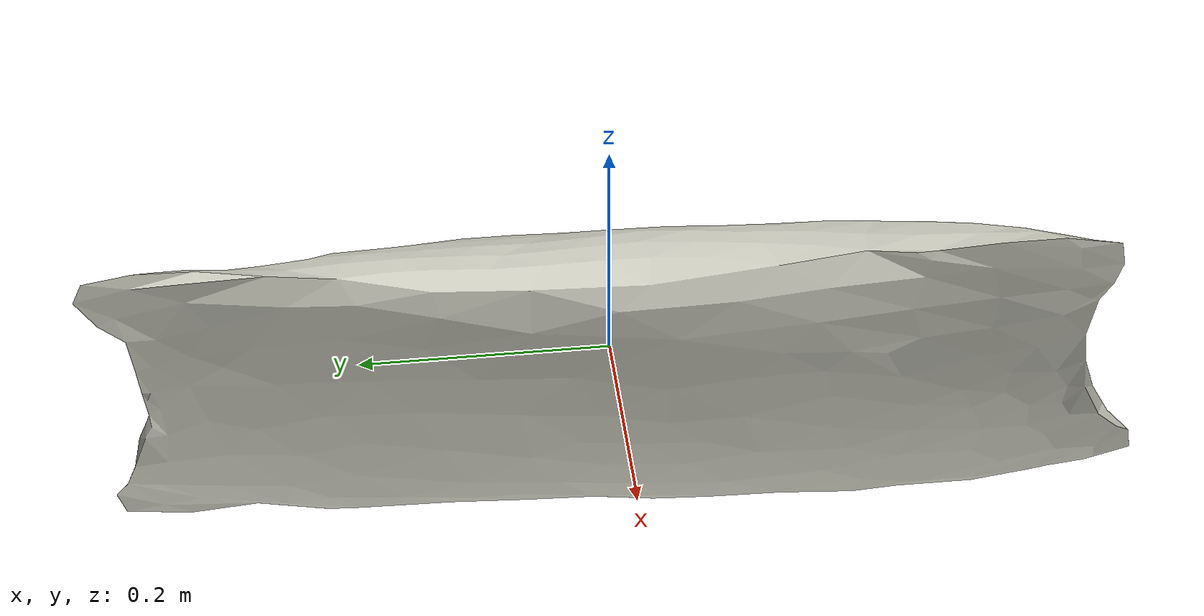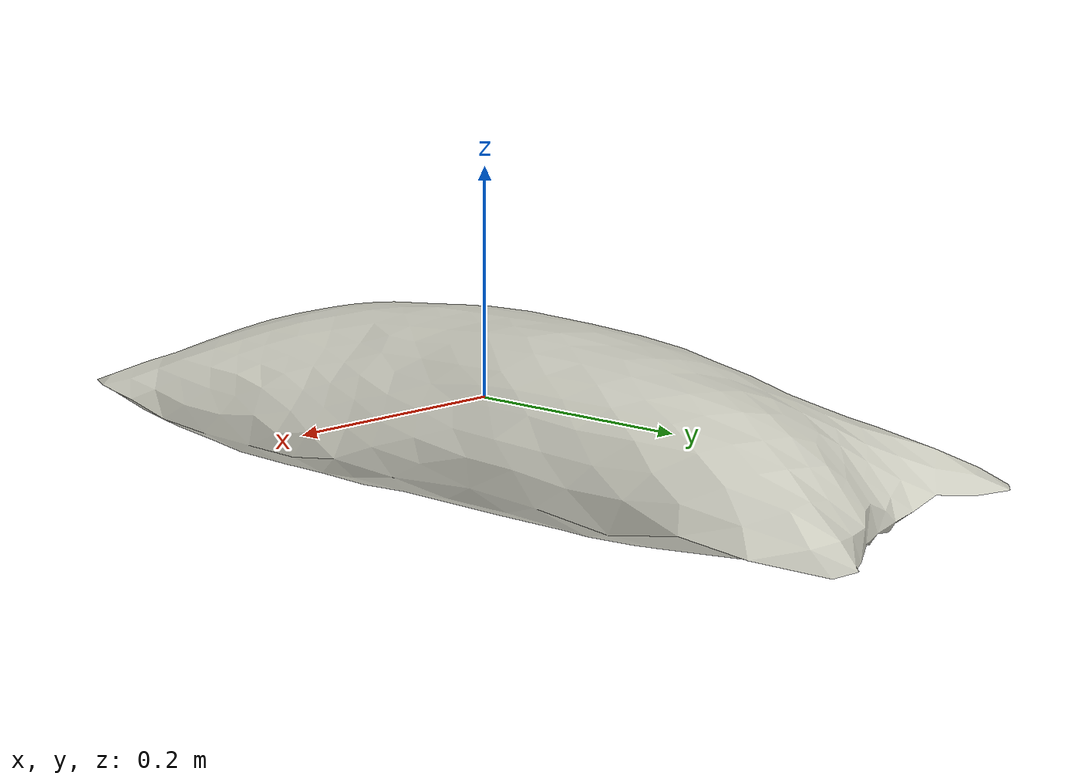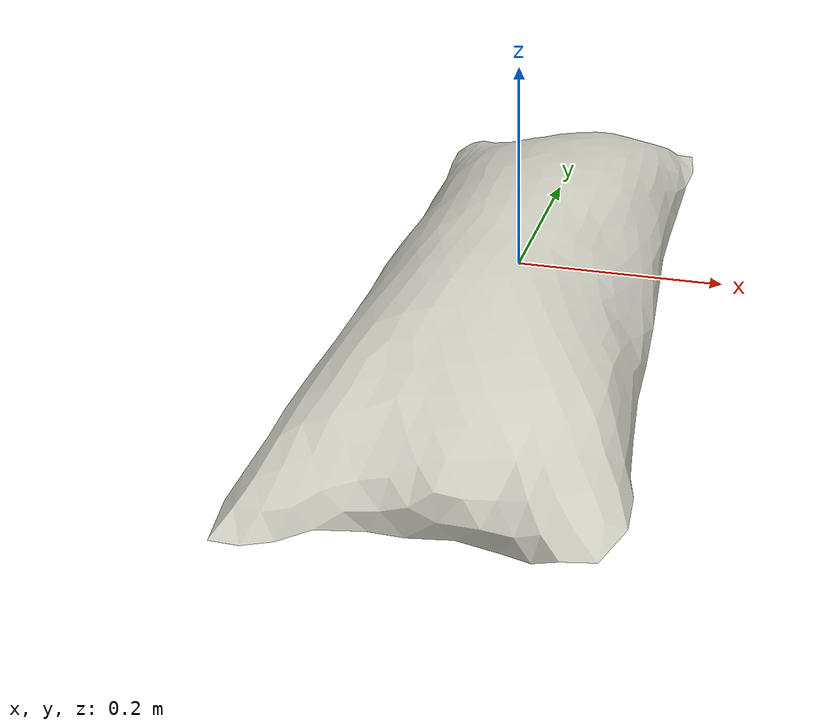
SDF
<?xml version="1.0" ?><sdf version="1.5"><model name="coffee-sack1">
<link name="link">
<pose>0 0 0 0 0 0</pose>
<inertial>
<pose>0 0 0 0 0 0</pose>
<mass>2</mass>
<inertia>
<ixx>0.117166833</ixx>
<ixy>0</ixy><iyy>0.022374833</iyy>
<ixz>0</ixz><iyz>0</iyz><izz>0.131533333</izz>
</inertia>
</inertial>
<visual name="visual">
<pose>0 0 0 0 0 0</pose>
<geometry><mesh><uri>model://coffee-sack3-centered/meshes/coffee-sack3-centered.dae</uri></mesh></geometry>
<material><script><uri>file://media/materials/scripts/gazebo.material</uri><name>Gazebo/PaintedWall</name></script></material></visual>
<collision name="collision"><pose>0 0 0 0 0 0</pose><geometry><mesh><uri>model://coffee-sack3-centered/meshes/coffee-sack3-centered.dae</uri></mesh></geometry>
<surface><friction><ode><mu>1.000000</mu><mu2>1.000000</mu2></ode></friction></surface>
</collision></link></model></sdf>
